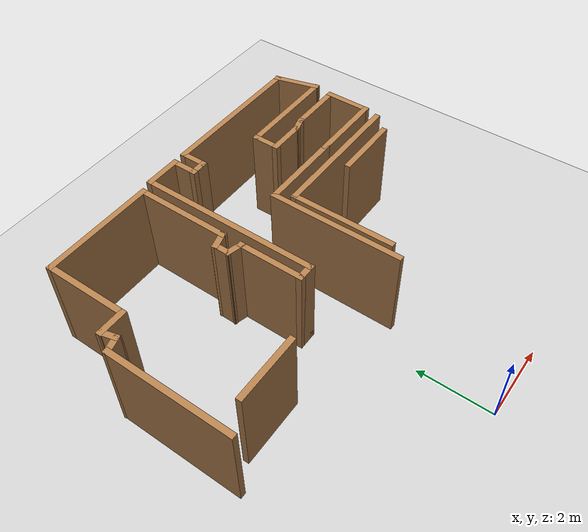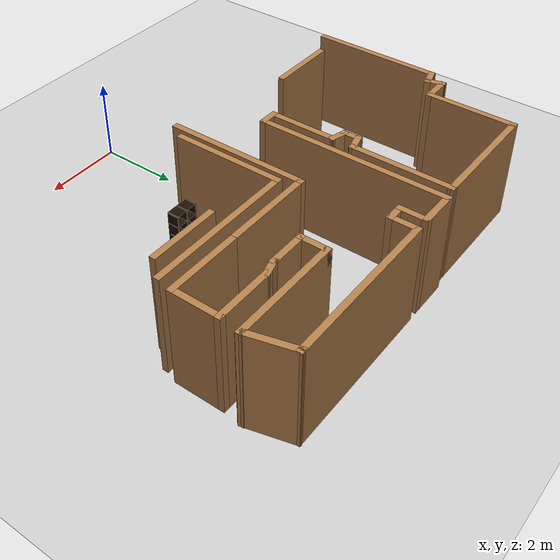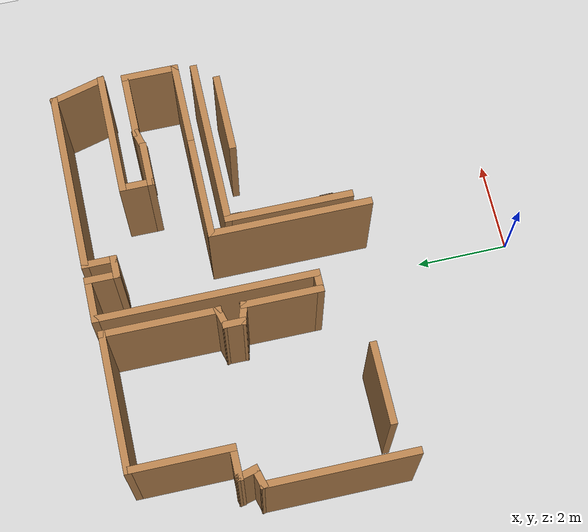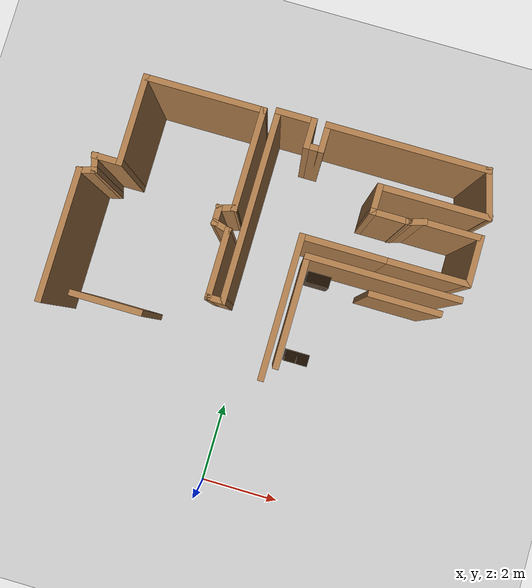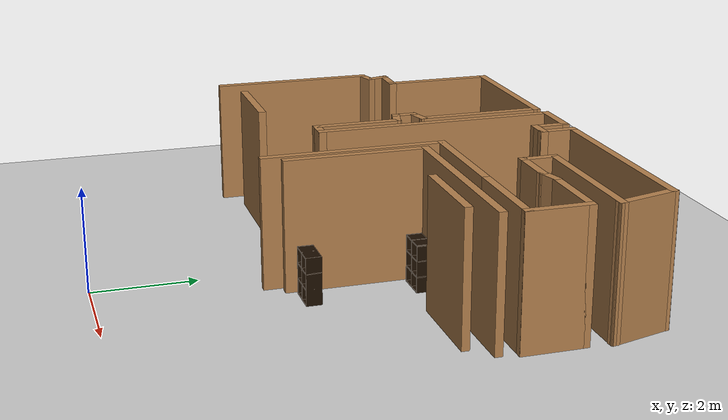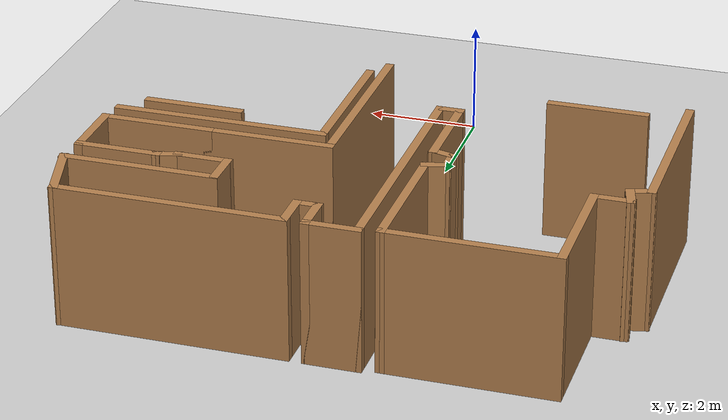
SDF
<sdf version="1.6">
 <world name="default">
  <model name="ground_plane">
   <static>1</static>
   <link name="link">
    <collision name="collision">
     <geometry><plane><normal>0 0 1</normal><size>100 100</size></plane></geometry>
     <surface>
      <contact><collide_bitmask>65535</collide_bitmask></contact>
      <friction><ode><mu>100</mu><mu2>50</mu2></ode></friction>
     </surface>
    </collision>
    <visual name="visual">
     <cast_shadows>0</cast_shadows>
     <geometry><plane><normal>0 0 1</normal><size>100 100</size></plane></geometry>
     <material>
      <script><uri>file://media/materials/scripts/gazebo.material</uri><name>Gazebo/Grey</name></script>
     </material>
    </visual>
   </link>
  </model>
  <model name="map_31">
   <pose>0.094706 -0.239588 0 0 -0 0</pose>
   <link name="Wall_0">
    <collision name="Wall_0_Collision">
     <geometry><box><size>3 0.15 2.5</size></box></geometry>
     <pose>0 0 1.25 0 -0 0</pose>
    </collision>
    <visual name="Wall_0_Visual">
     <pose>0 0 1.25 0 -0 0</pose>
     <geometry><box><size>3 0.15 2.5</size></box></geometry>
     <material>
      <script><uri>file://media/materials/scripts/gazebo.material</uri><name>Gazebo/Wood</name></script>
      <ambient>1 1 1 1</ambient>
     </material>
     <meta><layer>0</layer></meta>
    </visual>
    <pose>-2.44947 9.31 0 0 -0 3.14159</pose>
   </link>
   <link name="Wall_1">
    <collision name="Wall_1_Collision">
     <geometry><box><size>2.25 0.15 2.5</size></box></geometry>
     <pose>0 0 1.25 0 -0 0</pose>
    </collision>
    <visual name="Wall_1_Visual">
     <pose>0 0 1.25 0 -0 0</pose>
     <geometry><box><size>2.25 0.15 2.5</size></box></geometry>
     <material>
      <script><uri>file://media/materials/scripts/gazebo.material</uri><name>Gazebo/Wood</name></script>
      <ambient>1 1 1 1</ambient>
     </material>
     <meta><layer>0</layer></meta>
    </visual>
    <pose>-3.87447 8.26 0 0 -0 -1.5708</pose>
   </link>
   <link name="Wall_100">
    <collision name="Wall_100_Collision">
     <geometry><box><size>3.5 0.15 2.5</size></box></geometry>
     <pose>0 0 1.25 0 -0 0</pose>
    </collision>
    <visual name="Wall_100_Visual">
     <pose>0 0 1.25 0 -0 0</pose>
     <geometry><box><size>3.5 0.15 2.5</size></box></geometry>
     <material>
      <script><uri>file://media/materials/scripts/gazebo.material</uri><name>Gazebo/Wood</name></script>
      <ambient>1 1 1 1</ambient>
     </material>
     <meta><layer>0</layer></meta>
    </visual>
    <pose>0.643586 5.04256 0 0 -0 1.5708</pose>
   </link>
   <link name="Wall_101">
    <collision name="Wall_101_Collision">
     <geometry><box><size>2.25 0.15 2.5</size></box></geometry>
     <pose>0 0 1.25 0 -0 0</pose>
    </collision>
    <visual name="Wall_101_Visual">
     <pose>0 0 1.25 0 -0 0</pose>
     <geometry><box><size>2.25 0.15 2.5</size></box></geometry>
     <material>
      <script><uri>file://media/materials/scripts/gazebo.material</uri><name>Gazebo/Wood</name></script>
      <ambient>1 1 1 1</ambient>
     </material>
     <meta><layer>0</layer></meta>
    </visual>
    <pose>1.69359 6.71756 0 0 -0 0</pose>
   </link>
   <link name="Wall_102">
    <collision name="Wall_102_Collision">
     <geometry><box><size>2 0.15 2.5</size></box></geometry>
     <pose>0 0 1.25 0 -0 0</pose>
    </collision>
    <visual name="Wall_102_Visual">
     <pose>0 0 1.25 0 -0 0</pose>
     <geometry><box><size>2 0.15 2.5</size></box></geometry>
     <material>
      <script><uri>file://media/materials/scripts/gazebo.material</uri><name>Gazebo/Wood</name></script>
      <ambient>1 1 1 1</ambient>
     </material>
     <meta><layer>0</layer></meta>
    </visual>
    <pose>3.66859 6.71756 0 0 -0 0</pose>
   </link>
   <link name="Wall_103">
    <collision name="Wall_103_Collision">
     <geometry><box><size>1.25 0.15 2.5</size></box></geometry>
     <pose>0 0 1.25 0 -0 0</pose>
    </collision>
    <visual name="Wall_103_Visual">
     <pose>0 0 1.25 0 -0 0</pose>
     <geometry><box><size>1.25 0.15 2.5</size></box></geometry>
     <material>
      <script><uri>file://media/materials/scripts/gazebo.material</uri><name>Gazebo/Wood</name></script>
      <ambient>1 1 1 1</ambient>
     </material>
     <meta><layer>0</layer></meta>
    </visual>
    <pose>4.59359 7.26756 0 0 -0 1.5708</pose>
   </link>
   <link name="Wall_104">
    <collision name="Wall_104_Collision">
     <geometry><box><size>1.5 0.15 2.5</size></box></geometry>
     <pose>0 0 1.25 0 -0 0</pose>
    </collision>
    <visual name="Wall_104_Visual">
     <pose>0 0 1.25 0 -0 0</pose>
     <geometry><box><size>1.5 0.15 2.5</size></box></geometry>
     <material>
      <script><uri>file://media/materials/scripts/gazebo.material</uri><name>Gazebo/Wood</name></script>
      <ambient>1 1 1 1</ambient>
     </material>
     <meta><layer>0</layer></meta>
    </visual>
    <pose>3.91859 7.81756 0 0 -0 3.14159</pose>
   </link>
   <link name="Wall_105">
    <collision name="Wall_105_Collision">
     <geometry><box><size>0.5 0.15 2.5</size></box></geometry>
     <pose>0 0 1.25 0 -0 0</pose>
    </collision>
    <visual name="Wall_105_Visual">
     <pose>0 0 1.25 0 -0 0</pose>
     <geometry><box><size>0.5 0.15 2.5</size></box></geometry>
     <material>
      <script><uri>file://media/materials/scripts/gazebo.material</uri><name>Gazebo/Wood</name></script>
      <ambient>1 1 1 1</ambient>
     </material>
     <meta><layer>0</layer></meta>
    </visual>
    <pose>3.07455 7.77226 0 0 -0 -2.87979</pose>
   </link>
   <link name="Wall_106">
    <collision name="Wall_106_Collision">
     <geometry><box><size>1 0.15 2.5</size></box></geometry>
     <pose>0 0 1.25 0 -0 0</pose>
    </collision>
    <visual name="Wall_106_Visual">
     <pose>0 0 1.25 0 -0 0</pose>
     <geometry><box><size>1 0.15 2.5</size></box></geometry>
     <material>
      <script><uri>file://media/materials/scripts/gazebo.material</uri><name>Gazebo/Wood</name></script>
      <ambient>1 1 1 1</ambient>
     </material>
     <meta><layer>0</layer></meta>
    </visual>
    <pose>2.48051 7.72697 0 0 -0 3.14159</pose>
   </link>
   <link name="Wall_107">
    <collision name="Wall_107_Collision">
     <geometry><box><size>0.75 0.15 2.5</size></box></geometry>
     <pose>0 0 1.25 0 -0 0</pose>
    </collision>
    <visual name="Wall_107_Visual">
     <pose>0 0 1.25 0 -0 0</pose>
     <geometry><box><size>0.75 0.15 2.5</size></box></geometry>
     <material>
      <script><uri>file://media/materials/scripts/gazebo.material</uri><name>Gazebo/Wood</name></script>
      <ambient>1 1 1 1</ambient>
     </material>
     <meta><layer>0</layer></meta>
    </visual>
    <pose>2.05551 8.02697 0 0 -0 1.5708</pose>
   </link>
   <link name="Wall_108">
    <collision name="Wall_108_Collision">
     <geometry><box><size>2.75 0.15 2.5</size></box></geometry>
     <pose>0 0 1.25 0 -0 0</pose>
    </collision>
    <visual name="Wall_108_Visual">
     <pose>0 0 1.25 0 -0 0</pose>
     <geometry><box><size>2.75 0.15 2.5</size></box></geometry>
     <material>
      <script><uri>file://media/materials/scripts/gazebo.material</uri><name>Gazebo/Wood</name></script>
      <ambient>1 1 1 1</ambient>
     </material>
     <meta><layer>0</layer></meta>
    </visual>
    <pose>3.35551 8.32697 0 0 -0 0</pose>
   </link>
   <link name="Wall_109">
    <collision name="Wall_109_Collision">
     <geometry><box><size>1.25 0.15 2.5</size></box></geometry>
     <pose>0 0 1.25 0 -0 0</pose>
    </collision>
    <visual name="Wall_109_Visual">
     <pose>0 0 1.25 0 -0 0</pose>
     <geometry><box><size>1.25 0.15 2.5</size></box></geometry>
     <material>
      <script><uri>file://media/materials/scripts/gazebo.material</uri><name>Gazebo/Wood</name></script>
      <ambient>1 1 1 1</ambient>
     </material>
     <meta><layer>0</layer></meta>
    </visual>
    <pose>4.51316 8.85823 0 0 -0 1.8326</pose>
   </link>
   <link name="Wall_110">
    <collision name="Wall_110_Collision">
     <geometry><box><size>4 0.15 2.5</size></box></geometry>
     <pose>0 0 1.25 0 -0 0</pose>
    </collision>
    <visual name="Wall_110_Visual">
     <pose>0 0 1.25 0 -0 0</pose>
     <geometry><box><size>4 0.15 2.5</size></box></geometry>
     <material>
      <script><uri>file://media/materials/scripts/gazebo.material</uri><name>Gazebo/Wood</name></script>
      <ambient>1 1 1 1</ambient>
     </material>
     <meta><layer>0</layer></meta>
    </visual>
    <pose>2.44581 9.38949 0 0 -0 3.14159</pose>
   </link>
   <link name="Wall_111">
    <collision name="Wall_111_Collision">
     <geometry><box><size>0.75 0.15 2.5</size></box></geometry>
     <pose>0 0 1.25 0 -0 0</pose>
    </collision>
    <visual name="Wall_111_Visual">
     <pose>0 0 1.25 0 -0 0</pose>
     <geometry><box><size>0.75 0.15 2.5</size></box></geometry>
     <material>
      <script><uri>file://media/materials/scripts/gazebo.material</uri><name>Gazebo/Wood</name></script>
      <ambient>1 1 1 1</ambient>
     </material>
     <meta><layer>0</layer></meta>
    </visual>
    <pose>0.520811 9.08949 0 0 -0 -1.5708</pose>
   </link>
   <link name="Wall_112">
    <collision name="Wall_112_Collision">
     <geometry><box><size>0.5 0.15 2.5</size></box></geometry>
     <pose>0 0 1.25 0 -0 0</pose>
    </collision>
    <visual name="Wall_112_Visual">
     <pose>0 0 1.25 0 -0 0</pose>
     <geometry><box><size>0.5 0.15 2.5</size></box></geometry>
     <material>
      <script><uri>file://media/materials/scripts/gazebo.material</uri><name>Gazebo/Wood</name></script>
      <ambient>1 1 1 1</ambient>
     </material>
     <meta><layer>0</layer></meta>
    </visual>
    <pose>0.345811 8.78949 0 0 -0 3.14159</pose>
   </link>
   <link name="Wall_113">
    <collision name="Wall_113_Collision">
     <geometry><box><size>0.75 0.15 2.5</size></box></geometry>
     <pose>0 0 1.25 0 -0 0</pose>
    </collision>
    <visual name="Wall_113_Visual">
     <pose>0 0 1.25 0 -0 0</pose>
     <geometry><box><size>0.75 0.15 2.5</size></box></geometry>
     <material>
      <script><uri>file://media/materials/scripts/gazebo.material</uri><name>Gazebo/Wood</name></script>
      <ambient>1 1 1 1</ambient>
     </material>
     <meta><layer>0</layer></meta>
    </visual>
    <pose>0.170811 9.08949 0 0 -0 1.5708</pose>
   </link>
   <link name="Wall_116">
    <collision name="Wall_116_Collision">
     <geometry><box><size>1 0.15 2.5</size></box></geometry>
     <pose>0 0 1.25 0 -0 0</pose>
    </collision>
    <visual name="Wall_116_Visual">
     <pose>0 0 1.25 0 -0 0</pose>
     <geometry><box><size>1 0.15 2.5</size></box></geometry>
     <material>
      <script><uri>file://media/materials/scripts/gazebo.material</uri><name>Gazebo/Wood</name></script>
      <ambient>1 1 1 1</ambient>
     </material>
     <meta><layer>0</layer></meta>
    </visual>
    <pose>-0.254189 9.38949 0 0 -0 3.14159</pose>
   </link>
   <link name="Wall_117">
    <collision name="Wall_117_Collision">
     <geometry><box><size>4.75 0.15 2.5</size></box></geometry>
     <pose>0 0 1.25 0 -0 0</pose>
    </collision>
    <visual name="Wall_117_Visual">
     <pose>0 0 1.25 0 -0 0</pose>
     <geometry><box><size>4.75 0.15 2.5</size></box></geometry>
     <material>
      <script><uri>file://media/materials/scripts/gazebo.material</uri><name>Gazebo/Wood</name></script>
      <ambient>1 1 1 1</ambient>
     </material>
     <meta><layer>0</layer></meta>
    </visual>
    <pose>-0.679188 7.08949 0 0 -0 -1.5708</pose>
   </link>
   <link name="Wall_120">
    <collision name="Wall_120_Collision">
     <geometry><box><size>0.5 0.15 2.5</size></box></geometry>
     <pose>0 0 1.25 0 -0 0</pose>
    </collision>
    <visual name="Wall_120_Visual">
     <pose>0 0 1.25 0 -0 0</pose>
     <geometry><box><size>0.5 0.15 2.5</size></box></geometry>
     <material>
      <script><uri>file://media/materials/scripts/gazebo.material</uri><name>Gazebo/Wood</name></script>
      <ambient>1 1 1 1</ambient>
     </material>
     <meta><layer>0</layer></meta>
    </visual>
    <pose>-0.854189 4.78949 0 0 -0 3.14159</pose>
   </link>
   <link name="Wall_124">
    <collision name="Wall_124_Collision">
     <geometry><box><size>1.75 0.15 2.5</size></box></geometry>
     <pose>0 0 1.25 0 -0 0</pose>
    </collision>
    <visual name="Wall_124_Visual">
     <pose>0 0 1.25 0 -0 0</pose>
     <geometry><box><size>1.75 0.15 2.5</size></box></geometry>
     <material>
      <script><uri>file://media/materials/scripts/gazebo.material</uri><name>Gazebo/Wood</name></script>
      <ambient>1 1 1 1</ambient>
     </material>
     <meta><layer>0</layer></meta>
    </visual>
    <pose>-1.02919 5.58949 0 0 -0 1.5708</pose>
   </link>
   <link name="Wall_125">
    <collision name="Wall_125_Collision">
     <geometry><box><size>0.5 0.15 2.5</size></box></geometry>
     <pose>0 0 1.25 0 -0 0</pose>
    </collision>
    <visual name="Wall_125_Visual">
     <pose>0 0 1.25 0 -0 0</pose>
     <geometry><box><size>0.5 0.15 2.5</size></box></geometry>
     <material>
      <script><uri>file://media/materials/scripts/gazebo.material</uri><name>Gazebo/Wood</name></script>
      <ambient>1 1 1 1</ambient>
     </material>
     <meta><layer>0</layer></meta>
    </visual>
    <pose>-1.19823 6.43478 0 0 -0 2.87979</pose>
   </link>
   <link name="Wall_126">
    <collision name="Wall_126_Collision">
     <geometry><box><size>0.5 0.15 2.5</size></box></geometry>
     <pose>0 0 1.25 0 -0 0</pose>
    </collision>
    <visual name="Wall_126_Visual">
     <pose>0 0 1.25 0 -0 0</pose>
     <geometry><box><size>0.5 0.15 2.5</size></box></geometry>
     <material>
      <script><uri>file://media/materials/scripts/gazebo.material</uri><name>Gazebo/Wood</name></script>
      <ambient>1 1 1 1</ambient>
     </material>
     <meta><layer>0</layer></meta>
    </visual>
    <pose>-1.36726 6.65508 0 0 -0 1.5708</pose>
   </link>
   <link name="Wall_127">
    <collision name="Wall_127_Collision">
     <geometry><box><size>0.5 0.15 2.5</size></box></geometry>
     <pose>0 0 1.25 0 -0 0</pose>
    </collision>
    <visual name="Wall_127_Visual">
     <pose>0 0 1.25 0 -0 0</pose>
     <geometry><box><size>0.5 0.15 2.5</size></box></geometry>
     <material>
      <script><uri>file://media/materials/scripts/gazebo.material</uri><name>Gazebo/Wood</name></script>
      <ambient>1 1 1 1</ambient>
     </material>
     <meta><layer>0</layer></meta>
    </visual>
    <pose>-1.19823 6.87537 0 0 -0 0.261799</pose>
   </link>
   <link name="Wall_128">
    <collision name="Wall_128_Collision">
     <geometry><box><size>2.53934 0.15 2.5</size></box></geometry>
     <pose>0 0 1.25 0 -0 0</pose>
    </collision>
    <visual name="Wall_128_Visual">
     <pose>0 0 1.25 0 -0 0</pose>
     <geometry><box><size>2.53934 0.15 2.5</size></box></geometry>
     <material>
      <script><uri>file://media/materials/scripts/gazebo.material</uri><name>Gazebo/Wood</name></script>
      <ambient>1 1 1 1</ambient>
     </material>
     <meta><layer>0</layer></meta>
    </visual>
    <pose>-1.02683 8.11533 0 0 -0 1.56882</pose>
   </link>
   <link name="Wall_130">
    <collision name="Wall_130_Collision">
     <geometry><box><size>1.75 0.15 2.5</size></box></geometry>
     <pose>0 0 1.25 0 -0 0</pose>
    </collision>
    <visual name="Wall_130_Visual">
     <pose>0 0 1.25 0 -0 0</pose>
     <geometry><box><size>1.75 0.15 2.5</size></box></geometry>
     <material>
      <script><uri>file://media/materials/scripts/gazebo.material</uri><name>Gazebo/Wood</name></script>
      <ambient>1 1 1 1</ambient>
     </material>
     <meta><layer>0</layer></meta>
    </visual>
    <pose>3.32399 5.88389 0 0 -0 0</pose>
   </link>
   <link name="Wall_2">
    <collision name="Wall_2_Collision">
     <geometry><box><size>0.75 0.15 2.5</size></box></geometry>
     <pose>0 0 1.25 0 -0 0</pose>
    </collision>
    <visual name="Wall_2_Visual">
     <pose>0 0 1.25 0 -0 0</pose>
     <geometry><box><size>0.75 0.15 2.5</size></box></geometry>
     <material>
      <script><uri>file://media/materials/scripts/gazebo.material</uri><name>Gazebo/Wood</name></script>
      <ambient>1 1 1 1</ambient>
     </material>
     <meta><layer>0</layer></meta>
    </visual>
    <pose>-4.17447 7.21 0 0 -0 3.14159</pose>
   </link>
   <link name="Wall_3">
    <collision name="Wall_3_Collision">
     <geometry><box><size>0.5 0.15 2.5</size></box></geometry>
     <pose>0 0 1.25 0 -0 0</pose>
    </collision>
    <visual name="Wall_3_Visual">
     <pose>0 0 1.25 0 -0 0</pose>
     <geometry><box><size>0.5 0.15 2.5</size></box></geometry>
     <material>
      <script><uri>file://media/materials/scripts/gazebo.material</uri><name>Gazebo/Wood</name></script>
      <ambient>1 1 1 1</ambient>
     </material>
     <meta><layer>0</layer></meta>
    </visual>
    <pose>-4.42918 7.04096 0 0 -0 -1.309</pose>
   </link>
   <link name="Wall_4">
    <collision name="Wall_4_Collision">
     <geometry><box><size>0.5 0.15 2.5</size></box></geometry>
     <pose>0 0 1.25 0 -0 0</pose>
    </collision>
    <visual name="Wall_4_Visual">
     <pose>0 0 1.25 0 -0 0</pose>
     <geometry><box><size>0.5 0.15 2.5</size></box></geometry>
     <material>
      <script><uri>file://media/materials/scripts/gazebo.material</uri><name>Gazebo/Wood</name></script>
      <ambient>1 1 1 1</ambient>
     </material>
     <meta><layer>0</layer></meta>
    </visual>
    <pose>-4.55292 6.82663 0 0 -0 -2.87979</pose>
   </link>
   <link name="Wall_5">
    <collision name="Wall_5_Collision">
     <geometry><box><size>3.25 0.15 2.5</size></box></geometry>
     <pose>0 0 1.25 0 -0 0</pose>
    </collision>
    <visual name="Wall_5_Visual">
     <pose>0 0 1.25 0 -0 0</pose>
     <geometry><box><size>3.25 0.15 2.5</size></box></geometry>
     <material>
      <script><uri>file://media/materials/scripts/gazebo.material</uri><name>Gazebo/Wood</name></script>
      <ambient>1 1 1 1</ambient>
     </material>
     <meta><layer>0</layer></meta>
    </visual>
    <pose>-4.72196 5.23134 0 0 -0 -1.5708</pose>
   </link>
   <link name="Wall_8">
    <collision name="Wall_8_Collision">
     <geometry><box><size>1.75 0.15 2.5</size></box></geometry>
     <pose>0 0 1.25 0 -0 0</pose>
    </collision>
    <visual name="Wall_8_Visual">
     <pose>0 0 1.25 0 -0 0</pose>
     <geometry><box><size>1.75 0.15 2.5</size></box></geometry>
     <material>
      <script><uri>file://media/materials/scripts/gazebo.material</uri><name>Gazebo/Wood</name></script>
      <ambient>1 1 1 1</ambient>
     </material>
     <meta><layer>0</layer></meta>
    </visual>
    <pose>-3.23137 4.01941 0 0 -0 0</pose>
   </link>
   <link name="Wall_95">
    <collision name="Wall_95_Collision">
     <geometry><box><size>3.75 0.15 2.5</size></box></geometry>
     <pose>0 0 1.25 0 -0 0</pose>
    </collision>
    <visual name="Wall_95_Visual">
     <pose>0 0 1.25 0 -0 0</pose>
     <geometry><box><size>3.75 0.15 2.5</size></box></geometry>
     <material>
      <script><uri>file://media/materials/scripts/gazebo.material</uri><name>Gazebo/Wood</name></script>
      <ambient>1 1 1 1</ambient>
     </material>
     <meta><layer>0</layer></meta>
    </visual>
    <pose>2.69359 6.31756 0 0 -0 3.14159</pose>
   </link>
   <link name="Wall_96">
    <collision name="Wall_96_Collision">
     <geometry><box><size>2.75 0.15 2.5</size></box></geometry>
     <pose>0 0 1.25 0 -0 0</pose>
    </collision>
    <visual name="Wall_96_Visual">
     <pose>0 0 1.25 0 -0 0</pose>
     <geometry><box><size>2.75 0.15 2.5</size></box></geometry>
     <material>
      <script><uri>file://media/materials/scripts/gazebo.material</uri><name>Gazebo/Wood</name></script>
      <ambient>1 1 1 1</ambient>
     </material>
     <meta><layer>0</layer></meta>
    </visual>
    <pose>0.893586 5.01756 0 0 -0 -1.5708</pose>
   </link>
   <static>1</static>
  </model>
  <model name="6_Cube_StorageE_0">
   <link name="Wall_0">
    <pose>0 0 0.01 0 -0 0</pose>
    <inertial>
     <mass>1.6201</mass>
     <inertia><ixx>0.0119</ixx><iyy>0.0631</iyy><izz>0.0513</izz><ixy>0</ixy><ixz>0</ixz><iyz>0</iyz></inertia>
    </inertial>
    <collision name="Wall_0_Collision"><geometry><box><size>0.616 0.296 0.02</size></box></geometry></collision>
    <visual name="Wall_0_Visual">
     <geometry><box><size>0.616 0.296 0.02</size></box></geometry>
     <material>
      <script><uri>file://media/materials/scripts/gazebo.material</uri><name>Gazebo/Grey</name></script>
      <ambient>0.105882 0.0509804 0 1</ambient>
     </material>
    </visual>
   </link>
   <joint name="0_2" type="fixed">
    <pose>-0.308 0 0 0 -0 0</pose>
    <parent>Wall_2</parent>
    <child>Wall_0</child>
    <axis>
     <xyz>1 0 0</xyz>
     <use_parent_model_frame>0</use_parent_model_frame>
     <limit><lower>-1e+16</lower><upper>1e+16</upper></limit>
    </axis>
   </joint>
   <joint name="0_12" type="fixed">
    <parent>Wall_12</parent>
    <child>Wall_0</child>
    <axis>
     <xyz>0 0 1</xyz>
     <use_parent_model_frame>0</use_parent_model_frame>
     <limit><lower>-1e+16</lower><upper>1e+16</upper></limit>
    </axis>
   </joint>
   <joint name="0_4" type="fixed">
    <pose>0.308 0 0 0 -0 0</pose>
    <parent>Wall_4</parent>
    <child>Wall_0</child>
    <axis>
     <xyz>1 0 0</xyz>
     <use_parent_model_frame>0</use_parent_model_frame>
     <limit><lower>-1e+16</lower><upper>1e+16</upper></limit>
    </axis>
   </joint>
   <link name="Wall_10">
    <pose>0 0 0.61 0 -0 0</pose>
    <inertial>
     <mass>1.6201</mass>
     <inertia><ixx>0.0119</ixx><iyy>0.0631</iyy><izz>0.0513</izz><ixy>0</ixy><ixz>0</ixz><iyz>0</iyz></inertia>
    </inertial>
    <collision name="Wall_10_Collision"><geometry><box><size>0.616 0.296 0.02</size></box></geometry></collision>
    <visual name="Wall_10_Visual">
     <geometry><box><size>0.616 0.296 0.02</size></box></geometry>
     <material>
      <script><uri>file://media/materials/scripts/gazebo.material</uri><name>Gazebo/Grey</name></script>
      <ambient>0.105882 0.0509804 0 1</ambient>
     </material>
    </visual>
   </link>
   <joint name="10_2" type="fixed">
    <pose>-0.308 0 0 0 -0 0</pose>
    <parent>Wall_2</parent>
    <child>Wall_10</child>
    <axis>
     <xyz>1 0 0</xyz>
     <use_parent_model_frame>0</use_parent_model_frame>
     <limit><lower>-1e+16</lower><upper>1e+16</upper></limit>
    </axis>
   </joint>
   <joint name="10_12" type="fixed">
    <parent>Wall_12</parent>
    <child>Wall_10</child>
    <axis>
     <xyz>0 0 1</xyz>
     <use_parent_model_frame>0</use_parent_model_frame>
     <limit><lower>-1e+16</lower><upper>1e+16</upper></limit>
    </axis>
   </joint>
   <joint name="10_4" type="fixed">
    <pose>0.308 0 0 0 -0 0</pose>
    <parent>Wall_4</parent>
    <child>Wall_10</child>
    <axis>
     <xyz>1 0 0</xyz>
     <use_parent_model_frame>0</use_parent_model_frame>
     <limit><lower>-1e+16</lower><upper>1e+16</upper></limit>
    </axis>
   </joint>
   <link name="Wall_12">
    <pose>0 0 0.4575 0 -0 0</pose>
    <inertial>
     <mass>2.4065</mass>
     <inertia><ixx>0.0177</ixx><iyy>0.1855</iyy><izz>0.168</izz><ixy>0</ixy><ixz>0</ixz><iyz>0</iyz></inertia>
    </inertial>
    <collision name="Wall_12_Collision"><geometry><box><size>0.02 0.296 0.915</size></box></geometry></collision>
    <visual name="Wall_12_Visual">
     <geometry><box><size>0.02 0.296 0.915</size></box></geometry>
     <material>
      <script><uri>file://media/materials/scripts/gazebo.material</uri><name>Gazebo/Grey</name></script>
      <ambient>0.105882 0.0509804 0 1</ambient>
     </material>
    </visual>
   </link>
   <link name="Wall_2">
    <pose>-0.298 0 0.4575 0 -0 0</pose>
    <inertial>
     <mass>2.4065</mass>
     <inertia><ixx>0.0177</ixx><iyy>0.1855</iyy><izz>0.168</izz><ixy>0</ixy><ixz>0</ixz><iyz>0</iyz></inertia>
    </inertial>
    <collision name="Wall_2_Collision"><geometry><box><size>0.02 0.296 0.915</size></box></geometry></collision>
    <visual name="Wall_2_Visual">
     <geometry><box><size>0.02 0.296 0.915</size></box></geometry>
     <material>
      <script><uri>file://media/materials/scripts/gazebo.material</uri><name>Gazebo/Grey</name></script>
      <ambient>0.105882 0.0509804 0 1</ambient>
     </material>
    </visual>
   </link>
   <link name="Wall_4">
    <pose>0.298 0 0.4575 0 -0 0</pose>
    <inertial>
     <mass>2.4065</mass>
     <inertia><ixx>0.0177</ixx><iyy>0.1855</iyy><izz>0.168</izz><ixy>0</ixy><ixz>0</ixz><iyz>0</iyz></inertia>
    </inertial>
    <collision name="Wall_4_Collision"><geometry><box><size>0.02 0.296 0.915</size></box></geometry></collision>
    <visual name="Wall_4_Visual">
     <geometry><box><size>0.02 0.296 0.915</size></box></geometry>
     <material>
      <script><uri>file://media/materials/scripts/gazebo.material</uri><name>Gazebo/Grey</name></script>
      <ambient>0.105882 0.0509804 0 1</ambient>
     </material>
    </visual>
   </link>
   <link name="Wall_6">
    <pose>0 0 0.905 0 -0 0</pose>
    <inertial>
     <mass>1.6201</mass>
     <inertia><ixx>0.0119</ixx><iyy>0.0631</iyy><izz>0.0513</izz><ixy>0</ixy><ixz>0</ixz><iyz>0</iyz></inertia>
    </inertial>
    <collision name="Wall_6_Collision"><geometry><box><size>0.616 0.296 0.02</size></box></geometry></collision>
    <visual name="Wall_6_Visual">
     <geometry><box><size>0.616 0.296 0.02</size></box></geometry>
     <material>
      <script><uri>file://media/materials/scripts/gazebo.material</uri><name>Gazebo/Grey</name></script>
      <ambient>0.105882 0.0509804 0 1</ambient>
     </material>
    </visual>
   </link>
   <joint name="6_2" type="fixed">
    <pose>-0.308 0 0 0 -0 0</pose>
    <parent>Wall_2</parent>
    <child>Wall_6</child>
    <axis>
     <xyz>2 0 0</xyz>
     <use_parent_model_frame>0</use_parent_model_frame>
     <limit><lower>-1e+16</lower><upper>1e+16</upper></limit>
    </axis>
   </joint>
   <joint name="6_12" type="fixed">
    <parent>Wall_12</parent>
    <child>Wall_6</child>
    <axis>
     <xyz>0 0 1</xyz>
     <use_parent_model_frame>0</use_parent_model_frame>
     <limit><lower>-1e+16</lower><upper>1e+16</upper></limit>
    </axis>
   </joint>
   <joint name="6_4" type="fixed">
    <pose>0.308 0 0 0 -0 0</pose>
    <parent>Wall_4</parent>
    <child>Wall_6</child>
    <axis>
     <xyz>1 0 0</xyz>
     <use_parent_model_frame>0</use_parent_model_frame>
     <limit><lower>-1e+16</lower><upper>1e+16</upper></limit>
    </axis>
   </joint>
   <link name="Wall_8">
    <pose>0 0 0.305 0 -0 0</pose>
    <inertial>
     <mass>1.6201</mass>
     <inertia><ixx>0.0119</ixx><iyy>0.0631</iyy><izz>0.0513</izz><ixy>0</ixy><ixz>0</ixz><iyz>0</iyz></inertia>
    </inertial>
    <collision name="Wall_8_Collision"><geometry><box><size>0.616 0.296 0.02</size></box></geometry></collision>
    <visual name="Wall_8_Visual">
     <geometry><box><size>0.616 0.296 0.02</size></box></geometry>
     <material>
      <script><uri>file://media/materials/scripts/gazebo.material</uri><name>Gazebo/Grey</name></script>
      <ambient>0.105882 0.0509804 0 1</ambient>
     </material>
    </visual>
   </link>
   <joint name="8_2" type="fixed">
    <pose>-0.308 0 0 0 -0 0</pose>
    <parent>Wall_2</parent>
    <child>Wall_8</child>
    <axis>
     <xyz>1 0 0</xyz>
     <use_parent_model_frame>0</use_parent_model_frame>
     <limit><lower>-1e+16</lower><upper>1e+16</upper></limit>
    </axis>
   </joint>
   <joint name="8_12" type="fixed">
    <parent>Wall_12</parent>
    <child>Wall_8</child>
    <axis>
     <xyz>0 0 1</xyz>
     <use_parent_model_frame>0</use_parent_model_frame>
     <limit><lower>-1e+16</lower><upper>1e+16</upper></limit>
    </axis>
   </joint>
   <joint name="8_4" type="fixed">
    <pose>0.308 0 0 0 -0 0</pose>
    <parent>Wall_4</parent>
    <child>Wall_8</child>
    <axis>
     <xyz>1 0 0</xyz>
     <use_parent_model_frame>0</use_parent_model_frame>
     <limit><lower>-1e+16</lower><upper>1e+16</upper></limit>
    </axis>
   </joint>
   <static>1</static>
   <pose>1.44291 5.8133 0 0 -0 0</pose>
  </model>
  <model name="6_Cube_StorageE_1">
   <link name="Wall_0">
    <pose>0 0 0.01 0 -0 0</pose>
    <inertial>
     <mass>1.6201</mass>
     <inertia><ixx>0.0119</ixx><iyy>0.0631</iyy><izz>0.0513</izz><ixy>0</ixy><ixz>0</ixz><iyz>0</iyz></inertia>
    </inertial>
    <collision name="Wall_0_Collision"><geometry><box><size>0.616 0.296 0.02</size></box></geometry></collision>
    <visual name="Wall_0_Visual">
     <geometry><box><size>0.616 0.296 0.02</size></box></geometry>
     <material>
      <script><uri>file://media/materials/scripts/gazebo.material</uri><name>Gazebo/Grey</name></script>
      <ambient>0.105882 0.0509804 0 1</ambient>
     </material>
    </visual>
   </link>
   <joint name="0_2" type="fixed">
    <pose>-0.308 0 0 0 -0 0</pose>
    <parent>Wall_2</parent>
    <child>Wall_0</child>
    <axis>
     <xyz>1 0 0</xyz>
     <use_parent_model_frame>0</use_parent_model_frame>
     <limit><lower>-1e+16</lower><upper>1e+16</upper></limit>
    </axis>
   </joint>
   <joint name="0_12" type="fixed">
    <parent>Wall_12</parent>
    <child>Wall_0</child>
    <axis>
     <xyz>0 0 1</xyz>
     <use_parent_model_frame>0</use_parent_model_frame>
     <limit><lower>-1e+16</lower><upper>1e+16</upper></limit>
    </axis>
   </joint>
   <joint name="0_4" type="fixed">
    <pose>0.308 0 0 0 -0 0</pose>
    <parent>Wall_4</parent>
    <child>Wall_0</child>
    <axis>
     <xyz>1 0 0</xyz>
     <use_parent_model_frame>0</use_parent_model_frame>
     <limit><lower>-1e+16</lower><upper>1e+16</upper></limit>
    </axis>
   </joint>
   <link name="Wall_10">
    <pose>0 0 0.61 0 -0 0</pose>
    <inertial>
     <mass>1.6201</mass>
     <inertia><ixx>0.0119</ixx><iyy>0.0631</iyy><izz>0.0513</izz><ixy>0</ixy><ixz>0</ixz><iyz>0</iyz></inertia>
    </inertial>
    <collision name="Wall_10_Collision"><geometry><box><size>0.616 0.296 0.02</size></box></geometry></collision>
    <visual name="Wall_10_Visual">
     <geometry><box><size>0.616 0.296 0.02</size></box></geometry>
     <material>
      <script><uri>file://media/materials/scripts/gazebo.material</uri><name>Gazebo/Grey</name></script>
      <ambient>0.105882 0.0509804 0 1</ambient>
     </material>
    </visual>
   </link>
   <joint name="10_2" type="fixed">
    <pose>-0.308 0 0 0 -0 0</pose>
    <parent>Wall_2</parent>
    <child>Wall_10</child>
    <axis>
     <xyz>1 0 0</xyz>
     <use_parent_model_frame>0</use_parent_model_frame>
     <limit><lower>-1e+16</lower><upper>1e+16</upper></limit>
    </axis>
   </joint>
   <joint name="10_12" type="fixed">
    <parent>Wall_12</parent>
    <child>Wall_10</child>
    <axis>
     <xyz>0 0 1</xyz>
     <use_parent_model_frame>0</use_parent_model_frame>
     <limit><lower>-1e+16</lower><upper>1e+16</upper></limit>
    </axis>
   </joint>
   <joint name="10_4" type="fixed">
    <pose>0.308 0 0 0 -0 0</pose>
    <parent>Wall_4</parent>
    <child>Wall_10</child>
    <axis>
     <xyz>1 0 0</xyz>
     <use_parent_model_frame>0</use_parent_model_frame>
     <limit><lower>-1e+16</lower><upper>1e+16</upper></limit>
    </axis>
   </joint>
   <link name="Wall_12">
    <pose>0 0 0.4575 0 -0 0</pose>
    <inertial>
     <mass>2.4065</mass>
     <inertia><ixx>0.0177</ixx><iyy>0.1855</iyy><izz>0.168</izz><ixy>0</ixy><ixz>0</ixz><iyz>0</iyz></inertia>
    </inertial>
    <collision name="Wall_12_Collision"><geometry><box><size>0.02 0.296 0.915</size></box></geometry></collision>
    <visual name="Wall_12_Visual">
     <geometry><box><size>0.02 0.296 0.915</size></box></geometry>
     <material>
      <script><uri>file://media/materials/scripts/gazebo.material</uri><name>Gazebo/Grey</name></script>
      <ambient>0.105882 0.0509804 0 1</ambient>
     </material>
    </visual>
   </link>
   <link name="Wall_2">
    <pose>-0.298 0 0.4575 0 -0 0</pose>
    <inertial>
     <mass>2.4065</mass>
     <inertia><ixx>0.0177</ixx><iyy>0.1855</iyy><izz>0.168</izz><ixy>0</ixy><ixz>0</ixz><iyz>0</iyz></inertia>
    </inertial>
    <collision name="Wall_2_Collision"><geometry><box><size>0.02 0.296 0.915</size></box></geometry></collision>
    <visual name="Wall_2_Visual">
     <geometry><box><size>0.02 0.296 0.915</size></box></geometry>
     <material>
      <script><uri>file://media/materials/scripts/gazebo.material</uri><name>Gazebo/Grey</name></script>
      <ambient>0.105882 0.0509804 0 1</ambient>
     </material>
    </visual>
   </link>
   <link name="Wall_4">
    <pose>0.298 0 0.4575 0 -0 0</pose>
    <inertial>
     <mass>2.4065</mass>
     <inertia><ixx>0.0177</ixx><iyy>0.1855</iyy><izz>0.168</izz><ixy>0</ixy><ixz>0</ixz><iyz>0</iyz></inertia>
    </inertial>
    <collision name="Wall_4_Collision"><geometry><box><size>0.02 0.296 0.915</size></box></geometry></collision>
    <visual name="Wall_4_Visual">
     <geometry><box><size>0.02 0.296 0.915</size></box></geometry>
     <material>
      <script><uri>file://media/materials/scripts/gazebo.material</uri><name>Gazebo/Grey</name></script>
      <ambient>0.105882 0.0509804 0 1</ambient>
     </material>
    </visual>
   </link>
   <link name="Wall_6">
    <pose>0 0 0.905 0 -0 0</pose>
    <inertial>
     <mass>1.6201</mass>
     <inertia><ixx>0.0119</ixx><iyy>0.0631</iyy><izz>0.0513</izz><ixy>0</ixy><ixz>0</ixz><iyz>0</iyz></inertia>
    </inertial>
    <collision name="Wall_6_Collision"><geometry><box><size>0.616 0.296 0.02</size></box></geometry></collision>
    <visual name="Wall_6_Visual">
     <geometry><box><size>0.616 0.296 0.02</size></box></geometry>
     <material>
      <script><uri>file://media/materials/scripts/gazebo.material</uri><name>Gazebo/Grey</name></script>
      <ambient>0.105882 0.0509804 0 1</ambient>
     </material>
    </visual>
   </link>
   <joint name="6_2" type="fixed">
    <pose>-0.308 0 0 0 -0 0</pose>
    <parent>Wall_2</parent>
    <child>Wall_6</child>
    <axis>
     <xyz>2 0 0</xyz>
     <use_parent_model_frame>0</use_parent_model_frame>
     <limit><lower>-1e+16</lower><upper>1e+16</upper></limit>
    </axis>
   </joint>
   <joint name="6_12" type="fixed">
    <parent>Wall_12</parent>
    <child>Wall_6</child>
    <axis>
     <xyz>0 0 1</xyz>
     <use_parent_model_frame>0</use_parent_model_frame>
     <limit><lower>-1e+16</lower><upper>1e+16</upper></limit>
    </axis>
   </joint>
   <joint name="6_4" type="fixed">
    <pose>0.308 0 0 0 -0 0</pose>
    <parent>Wall_4</parent>
    <child>Wall_6</child>
    <axis>
     <xyz>1 0 0</xyz>
     <use_parent_model_frame>0</use_parent_model_frame>
     <limit><lower>-1e+16</lower><upper>1e+16</upper></limit>
    </axis>
   </joint>
   <link name="Wall_8">
    <pose>0 0 0.305 0 -0 0</pose>
    <inertial>
     <mass>1.6201</mass>
     <inertia><ixx>0.0119</ixx><iyy>0.0631</iyy><izz>0.0513</izz><ixy>0</ixy><ixz>0</ixz><iyz>0</iyz></inertia>
    </inertial>
    <collision name="Wall_8_Collision"><geometry><box><size>0.616 0.296 0.02</size></box></geometry></collision>
    <visual name="Wall_8_Visual">
     <geometry><box><size>0.616 0.296 0.02</size></box></geometry>
     <material>
      <script><uri>file://media/materials/scripts/gazebo.material</uri><name>Gazebo/Grey</name></script>
      <ambient>0.105882 0.0509804 0 1</ambient>
     </material>
    </visual>
   </link>
   <joint name="8_2" type="fixed">
    <pose>-0.308 0 0 0 -0 0</pose>
    <parent>Wall_2</parent>
    <child>Wall_8</child>
    <axis>
     <xyz>1 0 0</xyz>
     <use_parent_model_frame>0</use_parent_model_frame>
     <limit><lower>-1e+16</lower><upper>1e+16</upper></limit>
    </axis>
   </joint>
   <joint name="8_12" type="fixed">
    <parent>Wall_12</parent>
    <child>Wall_8</child>
    <axis>
     <xyz>0 0 1</xyz>
     <use_parent_model_frame>0</use_parent_model_frame>
     <limit><lower>-1e+16</lower><upper>1e+16</upper></limit>
    </axis>
   </joint>
   <joint name="8_4" type="fixed">
    <pose>0.308 0 0 0 -0 0</pose>
    <parent>Wall_4</parent>
    <child>Wall_8</child>
    <axis>
     <xyz>1 0 0</xyz>
     <use_parent_model_frame>0</use_parent_model_frame>
     <limit><lower>-1e+16</lower><upper>1e+16</upper></limit>
    </axis>
   </joint>
   <static>1</static>
   <pose>1.45095 3.75546 0 0 -0 0</pose>
  </model>
 </world>
</sdf>
